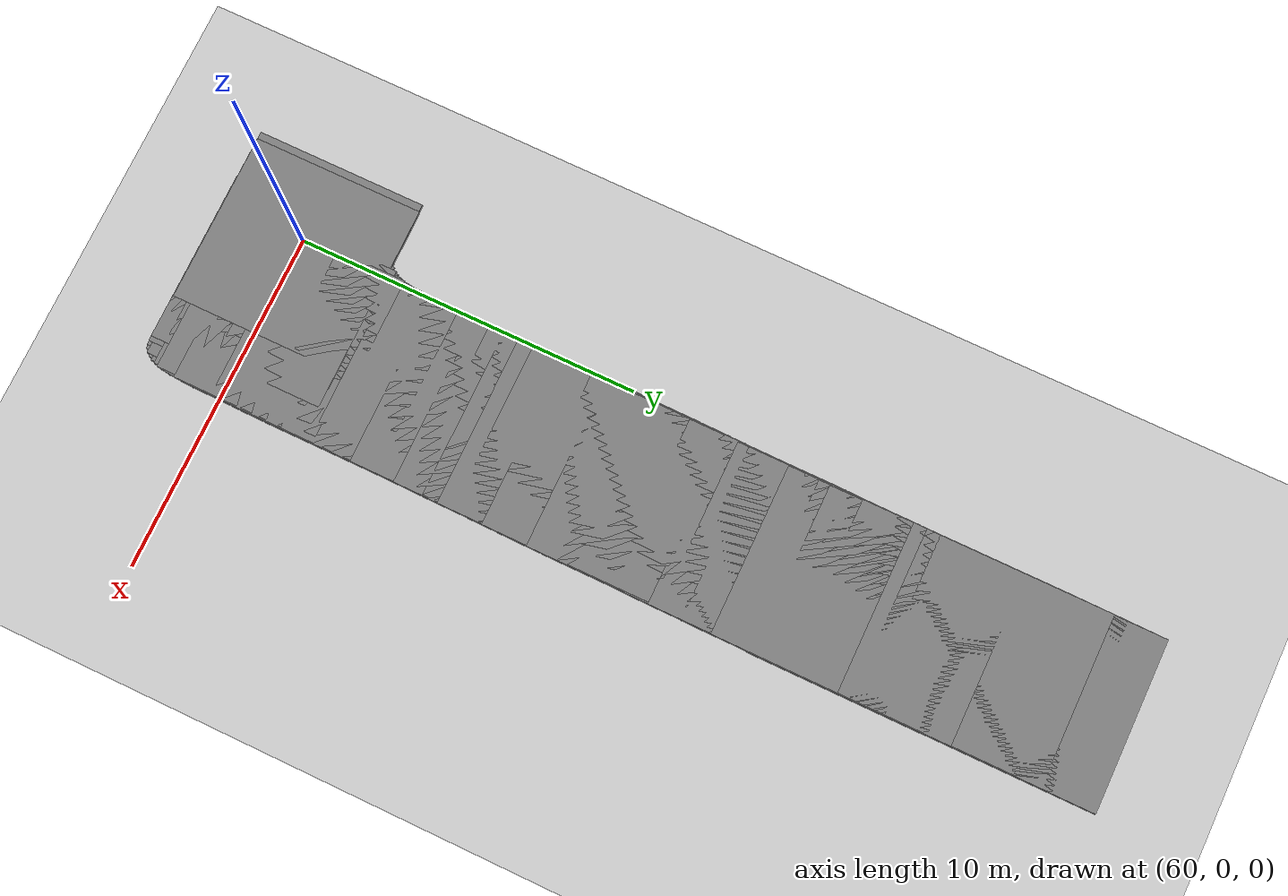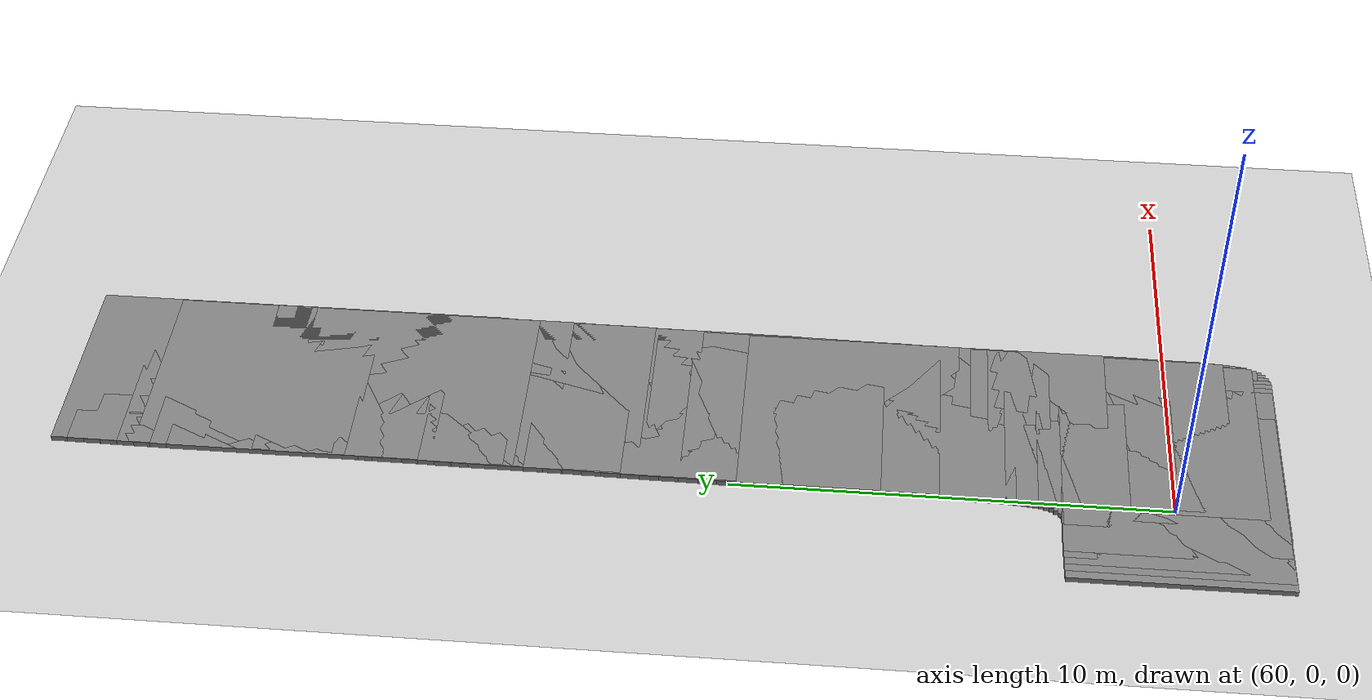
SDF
<sdf version="1.6">
 <world name="default">
  <include><uri>model://sun</uri></include>
  <include><uri>model://ground_plane</uri></include>
  <model name="road_segment_450">
   <static>true</static>
   <link name="link">
    <visual name="visual">
     <geometry><box><size>5.0 5.0 0.2</size></box></geometry>
     <material><ambient>0.5 0.5 0.5 1</ambient><diffuse>0.5 0.5 0.5 1</diffuse></material>
     <pose>62.62235191398804 23.10983084089393 0.0 0 0 0</pose>
    </visual>
    <collision name="collision">
     <geometry><box><size>5.0 5.0 0.2</size></box></geometry>
     <pose>62.62235191398804 23.10983084089393 0.0 0 0 0</pose>
    </collision>
   </link>
  </model>
  <model name="road_segment_451">
   <static>true</static>
   <link name="link">
    <visual name="visual">
     <geometry><box><size>5.0 5.0 0.2</size></box></geometry>
     <material><ambient>0.5 0.5 0.5 1</ambient><diffuse>0.5 0.5 0.5 1</diffuse></material>
     <pose>62.61729699920588 22.73719048786642 0.0 0 0 0</pose>
    </visual>
    <collision name="collision">
     <geometry><box><size>5.0 5.0 0.2</size></box></geometry>
     <pose>62.61729699920588 22.73719048786642 0.0 0 0 0</pose>
    </collision>
   </link>
  </model>
  <model name="road_segment_452">
   <static>true</static>
   <link name="link">
    <visual name="visual">
     <geometry><box><size>5.0 5.0 0.2</size></box></geometry>
     <material><ambient>0.5 0.5 0.5 1</ambient><diffuse>0.5 0.5 0.5 1</diffuse></material>
     <pose>62.613390928716115 22.349840647221697 0.0 0 0 0</pose>
    </visual>
    <collision name="collision">
     <geometry><box><size>5.0 5.0 0.2</size></box></geometry>
     <pose>62.613390928716115 22.349840647221697 0.0 0 0 0</pose>
    </collision>
   </link>
  </model>
  <model name="road_segment_453">
   <static>true</static>
   <link name="link">
    <visual name="visual">
     <geometry><box><size>5.0 5.0 0.2</size></box></geometry>
     <material><ambient>0.5 0.5 0.5 1</ambient><diffuse>0.5 0.5 0.5 1</diffuse></material>
     <pose>62.607187169706826 21.961673612818043 0.0 0 0 0</pose>
    </visual>
    <collision name="collision">
     <geometry><box><size>5.0 5.0 0.2</size></box></geometry>
     <pose>62.607187169706826 21.961673612818043 0.0 0 0 0</pose>
    </collision>
   </link>
  </model>
  <model name="road_segment_454">
   <static>true</static>
   <link name="link">
    <visual name="visual">
     <geometry><box><size>5.0 5.0 0.2</size></box></geometry>
     <material><ambient>0.5 0.5 0.5 1</ambient><diffuse>0.5 0.5 0.5 1</diffuse></material>
     <pose>62.605808556575504 21.57309798153129 0.0 0 0 0</pose>
    </visual>
    <collision name="collision">
     <geometry><box><size>5.0 5.0 0.2</size></box></geometry>
     <pose>62.605808556575504 21.57309798153129 0.0 0 0 0</pose>
    </collision>
   </link>
  </model>
  <model name="road_segment_455">
   <static>true</static>
   <link name="link">
    <visual name="visual">
     <geometry><box><size>5.0 5.0 0.2</size></box></geometry>
     <material><ambient>0.5 0.5 0.5 1</ambient><diffuse>0.5 0.5 0.5 1</diffuse></material>
     <pose>62.6021322549573 21.184930947127636 0.0 0 0 0</pose>
    </visual>
    <collision name="collision">
     <geometry><box><size>5.0 5.0 0.2</size></box></geometry>
     <pose>62.6021322549573 21.184930947127636 0.0 0 0 0</pose>
    </collision>
   </link>
  </model>
  <model name="road_segment_456">
   <static>true</static>
   <link name="link">
    <visual name="visual">
     <geometry><box><size>5.0 5.0 0.2</size></box></geometry>
     <material><ambient>0.5 0.5 0.5 1</ambient><diffuse>0.5 0.5 0.5 1</diffuse></material>
     <pose>62.59868572214534 20.797172509607076 0.0 0 0 0</pose>
    </visual>
    <collision name="collision">
     <geometry><box><size>5.0 5.0 0.2</size></box></geometry>
     <pose>62.59868572214534 20.797172509607076 0.0 0 0 0</pose>
    </collision>
   </link>
  </model>
  <model name="road_segment_457">
   <static>true</static>
   <link name="link">
    <visual name="visual">
     <geometry><box><size>5.0 5.0 0.2</size></box></geometry>
     <material><ambient>0.5 0.5 0.5 1</ambient><diffuse>0.5 0.5 0.5 1</diffuse></material>
     <pose>62.59569872707647 20.41390863774249 0.0 0 0 0</pose>
    </visual>
    <collision name="collision">
     <geometry><box><size>5.0 5.0 0.2</size></box></geometry>
     <pose>62.59569872707647 20.41390863774249 0.0 0 0 0</pose>
    </collision>
   </link>
  </model>
  <model name="road_segment_458">
   <static>true</static>
   <link name="link">
    <visual name="visual">
     <geometry><box><size>5.0 5.0 0.2</size></box></geometry>
     <material><ambient>0.5 0.5 0.5 1</ambient><diffuse>0.5 0.5 0.5 1</diffuse></material>
     <pose>62.59638803362579 20.02860178148421 0.0 0 0 0</pose>
    </visual>
    <collision name="collision">
     <geometry><box><size>5.0 5.0 0.2</size></box></geometry>
     <pose>62.59638803362579 20.02860178148421 0.0 0 0 0</pose>
    </collision>
   </link>
  </model>
  <model name="road_segment_459">
   <static>true</static>
   <link name="link">
    <visual name="visual">
     <geometry><box><size>5.0 5.0 0.2</size></box></geometry>
     <material><ambient>0.5 0.5 0.5 1</ambient><diffuse>0.5 0.5 0.5 1</diffuse></material>
     <pose>62.59661780249735 19.65718721909147 0.0 0 0 0</pose>
    </visual>
    <collision name="collision">
     <geometry><box><size>5.0 5.0 0.2</size></box></geometry>
     <pose>62.59661780249735 19.65718721909147 0.0 0 0 0</pose>
    </collision>
   </link>
  </model>
  <model name="road_segment_460">
   <static>true</static>
   <link name="link">
    <visual name="visual">
     <geometry><box><size>5.0 5.0 0.2</size></box></geometry>
     <material><ambient>0.5 0.5 0.5 1</ambient><diffuse>0.5 0.5 0.5 1</diffuse></material>
     <pose>62.60144294840797 19.318869003844714 0.0 0 0 0</pose>
    </visual>
    <collision name="collision">
     <geometry><box><size>5.0 5.0 0.2</size></box></geometry>
     <pose>62.60144294840797 19.318869003844714 0.0 0 0 0</pose>
    </collision>
   </link>
  </model>
  <model name="road_segment_461">
   <static>true</static>
   <link name="link">
    <visual name="visual">
     <geometry><box><size>5.0 5.0 0.2</size></box></geometry>
     <material><ambient>0.5 0.5 0.5 1</ambient><diffuse>0.5 0.5 0.5 1</diffuse></material>
     <pose>62.61040393364724 19.032033995265476 0.0 0 0 0</pose>
    </visual>
    <collision name="collision">
     <geometry><box><size>5.0 5.0 0.2</size></box></geometry>
     <pose>62.61040393364724 19.032033995265476 0.0 0 0 0</pose>
    </collision>
   </link>
  </model>
  <model name="road_segment_462">
   <static>true</static>
   <link name="link">
    <visual name="visual">
     <geometry><box><size>5.0 5.0 0.2</size></box></geometry>
     <material><ambient>0.5 0.5 0.5 1</ambient><diffuse>0.5 0.5 0.5 1</diffuse></material>
     <pose>62.61476954184744 18.810165890336194 0.0 0 0 0</pose>
    </visual>
    <collision name="collision">
     <geometry><box><size>5.0 5.0 0.2</size></box></geometry>
     <pose>62.61476954184744 18.810165890336194 0.0 0 0 0</pose>
    </collision>
   </link>
  </model>
  <model name="road_segment_463">
   <static>true</static>
   <link name="link">
    <visual name="visual">
     <geometry><box><size>5.0 5.0 0.2</size></box></geometry>
     <material><ambient>0.5 0.5 0.5 1</ambient><diffuse>0.5 0.5 0.5 1</diffuse></material>
     <pose>62.61706723036697 18.64182397646812 0.0 0 0 0</pose>
    </visual>
    <collision name="collision">
     <geometry><box><size>5.0 5.0 0.2</size></box></geometry>
     <pose>62.61706723036697 18.64182397646812 0.0 0 0 0</pose>
    </collision>
   </link>
  </model>
  <model name="road_segment_464">
   <static>true</static>
   <link name="link">
    <visual name="visual">
     <geometry><box><size>5.0 5.0 0.2</size></box></geometry>
     <material><ambient>0.5 0.5 0.5 1</ambient><diffuse>0.5 0.5 0.5 1</diffuse></material>
     <pose>62.61982445659696 18.51475034730632 0.0 0 0 0</pose>
    </visual>
    <collision name="collision">
     <geometry><box><size>5.0 5.0 0.2</size></box></geometry>
     <pose>62.61982445659696 18.51475034730632 0.0 0 0 0</pose>
    </collision>
   </link>
  </model>
  <model name="road_segment_465">
   <static>true</static>
   <link name="link">
    <visual name="visual">
     <geometry><box><size>5.0 5.0 0.2</size></box></geometry>
     <material><ambient>0.5 0.5 0.5 1</ambient><diffuse>0.5 0.5 0.5 1</diffuse></material>
     <pose>62.62028399430739 18.43303097164545 0.0 0 0 0</pose>
    </visual>
    <collision name="collision">
     <geometry><box><size>5.0 5.0 0.2</size></box></geometry>
     <pose>62.62028399430739 18.43303097164545 0.0 0 0 0</pose>
    </collision>
   </link>
  </model>
  <model name="road_segment_466">
   <static>true</static>
   <link name="link">
    <visual name="visual">
     <geometry><box><size>5.0 5.0 0.2</size></box></geometry>
     <material><ambient>0.5 0.5 0.5 1</ambient><diffuse>0.5 0.5 0.5 1</diffuse></material>
     <pose>62.62189237627761 18.36847266487133 0.0 0 0 0</pose>
    </visual>
    <collision name="collision">
     <geometry><box><size>5.0 5.0 0.2</size></box></geometry>
     <pose>62.62189237627761 18.36847266487133 0.0 0 0 0</pose>
    </collision>
   </link>
  </model>
  <model name="road_segment_467">
   <static>true</static>
   <link name="link">
    <visual name="visual">
     <geometry><box><size>5.0 5.0 0.2</size></box></geometry>
     <material><ambient>0.5 0.5 0.5 1</ambient><diffuse>0.5 0.5 0.5 1</diffuse></material>
     <pose>62.62717705986602 18.290839257990598 0.0 0 0 0</pose>
    </visual>
    <collision name="collision">
     <geometry><box><size>5.0 5.0 0.2</size></box></geometry>
     <pose>62.62717705986602 18.290839257990598 0.0 0 0 0</pose>
    </collision>
   </link>
  </model>
  <model name="road_segment_468">
   <static>true</static>
   <link name="link">
    <visual name="visual">
     <geometry><box><size>5.0 5.0 0.2</size></box></geometry>
     <material><ambient>0.5 0.5 0.5 1</ambient><diffuse>0.5 0.5 0.5 1</diffuse></material>
     <pose>62.62487937134647 18.182969682116507 0.0 0 0 0</pose>
    </visual>
    <collision name="collision">
     <geometry><box><size>5.0 5.0 0.2</size></box></geometry>
     <pose>62.62487937134647 18.182969682116507 0.0 0 0 0</pose>
    </collision>
   </link>
  </model>
  <model name="road_segment_469">
   <static>true</static>
   <link name="link">
    <visual name="visual">
     <geometry><box><size>5.0 5.0 0.2</size></box></geometry>
     <material><ambient>0.5 0.5 0.5 1</ambient><diffuse>0.5 0.5 0.5 1</diffuse></material>
     <pose>62.61270162216679 18.04118656533749 0.0 0 0 0</pose>
    </visual>
    <collision name="collision">
     <geometry><box><size>5.0 5.0 0.2</size></box></geometry>
     <pose>62.61270162216679 18.04118656533749 0.0 0 0 0</pose>
    </collision>
   </link>
  </model>
  <model name="road_segment_470">
   <static>true</static>
   <link name="link">
    <visual name="visual">
     <geometry><box><size>5.0 5.0 0.2</size></box></geometry>
     <material><ambient>0.5 0.5 0.5 1</ambient><diffuse>0.5 0.5 0.5 1</diffuse></material>
     <pose>62.60351086805597 17.860178148238646 0.0 0 0 0</pose>
    </visual>
    <collision name="collision">
     <geometry><box><size>5.0 5.0 0.2</size></box></geometry>
     <pose>62.60351086805597 17.860178148238646 0.0 0 0 0</pose>
    </collision>
   </link>
  </model>
  <model name="road_segment_471">
   <static>true</static>
   <link name="link">
    <visual name="visual">
     <geometry><box><size>5.0 5.0 0.2</size></box></geometry>
     <material><ambient>0.5 0.5 0.5 1</ambient><diffuse>0.5 0.5 0.5 1</diffuse></material>
     <pose>62.59868572214534 17.647299174635833 0.0 0 0 0</pose>
    </visual>
    <collision name="collision">
     <geometry><box><size>5.0 5.0 0.2</size></box></geometry>
     <pose>62.59868572214534 17.647299174635833 0.0 0 0 0</pose>
    </collision>
   </link>
  </model>
  <model name="road_segment_472">
   <static>true</static>
   <link name="link">
    <visual name="visual">
     <geometry><box><size>5.0 5.0 0.2</size></box></geometry>
     <material><ambient>0.5 0.5 0.5 1</ambient><diffuse>0.5 0.5 0.5 1</diffuse></material>
     <pose>62.59891549101688 17.408678597695637 0.0 0 0 0</pose>
    </visual>
    <collision name="collision">
     <geometry><box><size>5.0 5.0 0.2</size></box></geometry>
     <pose>62.59891549101688 17.408678597695637 0.0 0 0 0</pose>
    </collision>
   </link>
  </model>
  <model name="road_segment_473">
   <static>true</static>
   <link name="link">
    <visual name="visual">
     <geometry><box><size>5.0 5.0 0.2</size></box></geometry>
     <material><ambient>0.5 0.5 0.5 1</ambient><diffuse>0.5 0.5 0.5 1</diffuse></material>
     <pose>62.60305133034553 17.14881098308855 0.0 0 0 0</pose>
    </visual>
    <collision name="collision">
     <geometry><box><size>5.0 5.0 0.2</size></box></geometry>
     <pose>62.60305133034553 17.14881098308855 0.0 0 0 0</pose>
    </collision>
   </link>
  </model>
  <model name="road_segment_474">
   <static>true</static>
   <link name="link">
    <visual name="visual">
     <geometry><box><size>5.0 5.0 0.2</size></box></geometry>
     <material><ambient>0.5 0.5 0.5 1</ambient><diffuse>0.5 0.5 0.5 1</diffuse></material>
     <pose>62.603740636927505 16.873416687098057 0.0 0 0 0</pose>
    </visual>
    <collision name="collision">
     <geometry><box><size>5.0 5.0 0.2</size></box></geometry>
     <pose>62.603740636927505 16.873416687098057 0.0 0 0 0</pose>
    </collision>
   </link>
  </model>
  <model name="road_segment_475">
   <static>true</static>
   <link name="link">
    <visual name="visual">
     <geometry><box><size>5.0 5.0 0.2</size></box></geometry>
     <material><ambient>0.5 0.5 0.5 1</ambient><diffuse>0.5 0.5 0.5 1</diffuse></material>
     <pose>62.6021322549573 16.583312903490352 0.0 0 0 0</pose>
    </visual>
    <collision name="collision">
     <geometry><box><size>5.0 5.0 0.2</size></box></geometry>
     <pose>62.6021322549573 16.583312903490352 0.0 0 0 0</pose>
    </collision>
   </link>
  </model>
  <model name="road_segment_476">
   <static>true</static>
   <link name="link">
    <visual name="visual">
     <geometry><box><size>5.0 5.0 0.2</size></box></geometry>
     <material><ambient>0.5 0.5 0.5 1</ambient><diffuse>0.5 0.5 0.5 1</diffuse></material>
     <pose>62.59753687788556 16.282994197928666 0.0 0 0 0</pose>
    </visual>
    <collision name="collision">
     <geometry><box><size>5.0 5.0 0.2</size></box></geometry>
     <pose>62.59753687788556 16.282994197928666 0.0 0 0 0</pose>
    </collision>
   </link>
  </model>
  <model name="road_segment_477">
   <static>true</static>
   <link name="link">
    <visual name="visual">
     <geometry><box><size>5.0 5.0 0.2</size></box></geometry>
     <material><ambient>0.5 0.5 0.5 1</ambient><diffuse>0.5 0.5 0.5 1</diffuse></material>
     <pose>62.58903543035673 15.972460570405742 0.0 0 0 0</pose>
    </visual>
    <collision name="collision">
     <geometry><box><size>5.0 5.0 0.2</size></box></geometry>
     <pose>62.58903543035673 15.972460570405742 0.0 0 0 0</pose>
    </collision>
   </link>
  </model>
  <model name="road_segment_478">
   <static>true</static>
   <link name="link">
    <visual name="visual">
     <geometry><box><size>5.0 5.0 0.2</size></box></geometry>
     <material><ambient>0.5 0.5 0.5 1</ambient><diffuse>0.5 0.5 0.5 1</diffuse></material>
     <pose>62.58811635493585 15.649260439652043 0.0 0 0 0</pose>
    </visual>
    <collision name="collision">
     <geometry><box><size>5.0 5.0 0.2</size></box></geometry>
     <pose>62.58811635493585 15.649260439652043 0.0 0 0 0</pose>
    </collision>
   </link>
  </model>
  <model name="road_segment_479">
   <static>true</static>
   <link name="link">
    <visual name="visual">
     <geometry><box><size>5.0 5.0 0.2</size></box></geometry>
     <material><ambient>0.5 0.5 0.5 1</ambient><diffuse>0.5 0.5 0.5 1</diffuse></material>
     <pose>62.58880566151783 15.315436790061272 0.0 0 0 0</pose>
    </visual>
    <collision name="collision">
     <geometry><box><size>5.0 5.0 0.2</size></box></geometry>
     <pose>62.58880566151783 15.315436790061272 0.0 0 0 0</pose>
    </collision>
   </link>
  </model>
  <model name="road_segment_480">
   <static>true</static>
   <link name="link">
    <visual name="visual">
     <geometry><box><size>5.0 5.0 0.2</size></box></geometry>
     <material><ambient>0.5 0.5 0.5 1</ambient><diffuse>0.5 0.5 0.5 1</diffuse></material>
     <pose>62.585359128705875 14.963634877832074 0.0 0 0 0</pose>
    </visual>
    <collision name="collision">
     <geometry><box><size>5.0 5.0 0.2</size></box></geometry>
     <pose>62.585359128705875 14.963634877832074 0.0 0 0 0</pose>
    </collision>
   </link>
  </model>
  <model name="road_segment_481">
   <static>true</static>
   <link name="link">
    <visual name="visual">
     <geometry><box><size>5.0 5.0 0.2</size></box></geometry>
     <material><ambient>0.5 0.5 0.5 1</ambient><diffuse>0.5 0.5 0.5 1</diffuse></material>
     <pose>62.582372133637 14.59875786548901 0.0 0 0 0</pose>
    </visual>
    <collision name="collision">
     <geometry><box><size>5.0 5.0 0.2</size></box></geometry>
     <pose>62.582372133637 14.59875786548901 0.0 0 0 0</pose>
    </collision>
   </link>
  </model>
  <model name="road_segment_482">
   <static>true</static>
   <link name="link">
    <visual name="visual">
     <geometry><box><size>5.0 5.0 0.2</size></box></geometry>
     <material><ambient>0.5 0.5 0.5 1</ambient><diffuse>0.5 0.5 0.5 1</diffuse></material>
     <pose>62.57180276642752 14.218762768652892 0.0 0 0 0</pose>
    </visual>
    <collision name="collision">
     <geometry><box><size>5.0 5.0 0.2</size></box></geometry>
     <pose>62.57180276642752 14.218762768652892 0.0 0 0 0</pose>
    </collision>
   </link>
  </model>
  <model name="road_segment_483">
   <static>true</static>
   <link name="link">
    <visual name="visual">
     <geometry><box><size>5.0 5.0 0.2</size></box></geometry>
     <material><ambient>0.5 0.5 0.5 1</ambient><diffuse>0.5 0.5 0.5 1</diffuse></material>
     <pose>62.566518082806446 13.831412928008167 0.0 0 0 0</pose>
    </visual>
    <collision name="collision">
     <geometry><box><size>5.0 5.0 0.2</size></box></geometry>
     <pose>62.566518082806446 13.831412928008167 0.0 0 0 0</pose>
    </collision>
   </link>
  </model>
  <model name="road_segment_484">
   <static>true</static>
   <link name="link">
    <visual name="visual">
     <geometry><box><size>5.0 5.0 0.2</size></box></geometry>
     <material><ambient>0.5 0.5 0.5 1</ambient><diffuse>0.5 0.5 0.5 1</diffuse></material>
     <pose>62.5644501631258 13.439159924817112 0.0 0 0 0</pose>
    </visual>
    <collision name="collision">
     <geometry><box><size>5.0 5.0 0.2</size></box></geometry>
     <pose>62.5644501631258 13.439159924817112 0.0 0 0 0</pose>
    </collision>
   </link>
  </model>
  <model name="road_segment_485">
   <static>true</static>
   <link name="link">
    <visual name="visual">
     <geometry><box><size>5.0 5.0 0.2</size></box></geometry>
     <material><ambient>0.5 0.5 0.5 1</ambient><diffuse>0.5 0.5 0.5 1</diffuse></material>
     <pose>62.56582877625711 13.025659883959168 0.0 0 0 0</pose>
    </visual>
    <collision name="collision">
     <geometry><box><size>5.0 5.0 0.2</size></box></geometry>
     <pose>62.56582877625711 13.025659883959168 0.0 0 0 0</pose>
    </collision>
   </link>
  </model>
  <model name="road_segment_486">
   <static>true</static>
   <link name="link">
    <visual name="visual">
     <geometry><box><size>5.0 5.0 0.2</size></box></geometry>
     <material><ambient>0.5 0.5 0.5 1</ambient><diffuse>0.5 0.5 0.5 1</diffuse></material>
     <pose>62.565599007385565 12.608073874321082 0.0 0 0 0</pose>
    </visual>
    <collision name="collision">
     <geometry><box><size>5.0 5.0 0.2</size></box></geometry>
     <pose>62.565599007385565 12.608073874321082 0.0 0 0 0</pose>
    </collision>
   </link>
  </model>
  <model name="road_segment_487">
   <static>true</static>
   <link name="link">
    <visual name="visual">
     <geometry><box><size>5.0 5.0 0.2</size></box></geometry>
     <material><ambient>0.5 0.5 0.5 1</ambient><diffuse>0.5 0.5 0.5 1</diffuse></material>
     <pose>62.563301318866024 12.173735392664826 0.0 0 0 0</pose>
    </visual>
    <collision name="collision">
     <geometry><box><size>5.0 5.0 0.2</size></box></geometry>
     <pose>62.563301318866024 12.173735392664826 0.0 0 0 0</pose>
    </collision>
   </link>
  </model>
  <model name="road_segment_488">
   <static>true</static>
   <link name="link">
    <visual name="visual">
     <geometry><box><size>5.0 5.0 0.2</size></box></geometry>
     <material><ambient>0.5 0.5 0.5 1</ambient><diffuse>0.5 0.5 0.5 1</diffuse></material>
     <pose>62.5584761729554 11.735310942228427 0.0 0 0 0</pose>
    </visual>
    <collision name="collision">
     <geometry><box><size>5.0 5.0 0.2</size></box></geometry>
     <pose>62.5584761729554 11.735310942228427 0.0 0 0 0</pose>
    </collision>
   </link>
  </model>
  <model name="road_segment_489">
   <static>true</static>
   <link name="link">
    <visual name="visual">
     <geometry><box><size>5.0 5.0 0.2</size></box></geometry>
     <material><ambient>0.5 0.5 0.5 1</ambient><diffuse>0.5 0.5 0.5 1</diffuse></material>
     <pose>62.556867790985194 11.289531747976165 0.0 0 0 0</pose>
    </visual>
    <collision name="collision">
     <geometry><box><size>5.0 5.0 0.2</size></box></geometry>
     <pose>62.556867790985194 11.289531747976165 0.0 0 0 0</pose>
    </collision>
   </link>
  </model>
  <model name="road_segment_490">
   <static>true</static>
   <link name="link">
    <visual name="visual">
     <geometry><box><size>5.0 5.0 0.2</size></box></geometry>
     <material><ambient>0.5 0.5 0.5 1</ambient><diffuse>0.5 0.5 0.5 1</diffuse></material>
     <pose>62.54859611229525 10.849064313153326 0.0 0 0 0</pose>
    </visual>
    <collision name="collision">
     <geometry><box><size>5.0 5.0 0.2</size></box></geometry>
     <pose>62.54859611229525 10.849064313153326 0.0 0 0 0</pose>
    </collision>
   </link>
  </model>
  <model name="road_segment_491">
   <static>true</static>
   <link name="link">
    <visual name="visual">
     <geometry><box><size>5.0 5.0 0.2</size></box></geometry>
     <material><ambient>0.5 0.5 0.5 1</ambient><diffuse>0.5 0.5 0.5 1</diffuse></material>
     <pose>62.54009466476641 10.405328103294762 0.0 0 0 0</pose>
    </visual>
    <collision name="collision">
     <geometry><box><size>5.0 5.0 0.2</size></box></geometry>
     <pose>62.54009466476641 10.405328103294762 0.0 0 0 0</pose>
    </collision>
   </link>
  </model>
  <model name="road_segment_492">
   <static>true</static>
   <link name="link">
    <visual name="visual">
     <geometry><box><size>5.0 5.0 0.2</size></box></geometry>
     <material><ambient>0.5 0.5 0.5 1</ambient><diffuse>0.5 0.5 0.5 1</diffuse></material>
     <pose>62.535269518855785 9.96118329656036 0.0 0 0 0</pose>
    </visual>
    <collision name="collision">
     <geometry><box><size>5.0 5.0 0.2</size></box></geometry>
     <pose>62.535269518855785 9.96118329656036 0.0 0 0 0</pose>
    </collision>
   </link>
  </model>
  <model name="road_segment_493">
   <static>true</static>
   <link name="link">
    <visual name="visual">
     <geometry><box><size>5.0 5.0 0.2</size></box></geometry>
     <material><ambient>0.5 0.5 0.5 1</ambient><diffuse>0.5 0.5 0.5 1</diffuse></material>
     <pose>62.526078764744966 9.521941652365031 0.0 0 0 0</pose>
    </visual>
    <collision name="collision">
     <geometry><box><size>5.0 5.0 0.2</size></box></geometry>
     <pose>62.526078764744966 9.521941652365031 0.0 0 0 0</pose>
    </collision>
   </link>
  </model>
  <model name="road_segment_494">
   <static>true</static>
   <link name="link">
    <visual name="visual">
     <geometry><box><size>5.0 5.0 0.2</size></box></geometry>
     <material><ambient>0.5 0.5 0.5 1</ambient><diffuse>0.5 0.5 0.5 1</diffuse></material>
     <pose>62.52401084509697 9.079022636272656 0.0 0 0 0</pose>
    </visual>
    <collision name="collision">
     <geometry><box><size>5.0 5.0 0.2</size></box></geometry>
     <pose>62.52401084509697 9.079022636272656 0.0 0 0 0</pose>
    </collision>
   </link>
  </model>
  <model name="road_segment_495">
   <static>true</static>
   <link name="link">
    <visual name="visual">
     <geometry><box><size>5.0 5.0 0.2</size></box></geometry>
     <material><ambient>0.5 0.5 0.5 1</ambient><diffuse>0.5 0.5 0.5 1</diffuse></material>
     <pose>62.52102384999544 8.631200457633952 0.0 0 0 0</pose>
    </visual>
    <collision name="collision">
     <geometry><box><size>5.0 5.0 0.2</size></box></geometry>
     <pose>62.52102384999544 8.631200457633952 0.0 0 0 0</pose>
    </collision>
   </link>
  </model>
  <model name="road_segment_496">
   <static>true</static>
   <link name="link">
    <visual name="visual">
     <geometry><box><size>5.0 5.0 0.2</size></box></geometry>
     <material><ambient>0.5 0.5 0.5 1</ambient><diffuse>0.5 0.5 0.5 1</diffuse></material>
     <pose>62.51436055327571 8.194001797825063 0.0 0 0 0</pose>
    </visual>
    <collision name="collision">
     <geometry><box><size>5.0 5.0 0.2</size></box></geometry>
     <pose>62.51436055327571 8.194001797825063 0.0 0 0 0</pose>
    </collision>
   </link>
  </model>
  <model name="road_segment_497">
   <static>true</static>
   <link name="link">
    <visual name="visual">
     <geometry><box><size>5.0 5.0 0.2</size></box></geometry>
     <material><ambient>0.5 0.5 0.5 1</ambient><diffuse>0.5 0.5 0.5 1</diffuse></material>
     <pose>62.50723771884553 7.764975075590972 0.0 0 0 0</pose>
    </visual>
    <collision name="collision">
     <geometry><box><size>5.0 5.0 0.2</size></box></geometry>
     <pose>62.50723771884553 7.764975075590972 0.0 0 0 0</pose>
    </collision>
   </link>
  </model>
  <model name="road_segment_498">
   <static>true</static>
   <link name="link">
    <visual name="visual">
     <geometry><box><size>5.0 5.0 0.2</size></box></geometry>
     <material><ambient>0.5 0.5 0.5 1</ambient><diffuse>0.5 0.5 0.5 1</diffuse></material>
     <pose>62.502182804096016 7.333088175211509 0.0 0 0 0</pose>
    </visual>
    <collision name="collision">
     <geometry><box><size>5.0 5.0 0.2</size></box></geometry>
     <pose>62.502182804096016 7.333088175211509 0.0 0 0 0</pose>
    </collision>
   </link>
  </model>
  <model name="road_segment_499">
   <static>true</static>
   <link name="link">
    <visual name="visual">
     <geometry><box><size>5.0 5.0 0.2</size></box></geometry>
     <material><ambient>0.5 0.5 0.5 1</ambient><diffuse>0.5 0.5 0.5 1</diffuse></material>
     <pose>62.5005744221258 6.8962981122857165 0.0 0 0 0</pose>
    </visual>
    <collision name="collision">
     <geometry><box><size>5.0 5.0 0.2</size></box></geometry>
     <pose>62.5005744221258 6.8962981122857165 0.0 0 0 0</pose>
    </collision>
   </link>
  </model>
  <model name="road_segment_500">
   <static>true</static>
   <link name="link">
    <visual name="visual">
     <geometry><box><size>5.0 5.0 0.2</size></box></geometry>
     <material><ambient>0.5 0.5 0.5 1</ambient><diffuse>0.5 0.5 0.5 1</diffuse></material>
     <pose>62.49322181885674 6.4631854212642255 0.0 0 0 0</pose>
    </visual>
    <collision name="collision">
     <geometry><box><size>5.0 5.0 0.2</size></box></geometry>
     <pose>62.49322181885674 6.4631854212642255 0.0 0 0 0</pose>
    </collision>
   </link>
  </model>
  <model name="road_segment_501">
   <static>true</static>
   <link name="link">
    <visual name="visual">
     <geometry><box><size>5.0 5.0 0.2</size></box></geometry>
     <material><ambient>0.5 0.5 0.5 1</ambient><diffuse>0.5 0.5 0.5 1</diffuse></material>
     <pose>62.484490602456354 6.048868186647349 0.0 0 0 0</pose>
    </visual>
    <collision name="collision">
     <geometry><box><size>5.0 5.0 0.2</size></box></geometry>
     <pose>62.484490602456354 6.048868186647349 0.0 0 0 0</pose>
    </collision>
   </link>
  </model>
  <model name="road_segment_502">
   <static>true</static>
   <link name="link">
    <visual name="visual">
     <geometry><box><size>5.0 5.0 0.2</size></box></geometry>
     <material><ambient>0.5 0.5 0.5 1</ambient><diffuse>0.5 0.5 0.5 1</diffuse></material>
     <pose>62.48150360735484 5.6451744708675475 0.0 0 0 0</pose>
    </visual>
    <collision name="collision">
     <geometry><box><size>5.0 5.0 0.2</size></box></geometry>
     <pose>62.48150360735484 5.6451744708675475 0.0 0 0 0</pose>
    </collision>
   </link>
  </model>
  <model name="road_segment_503">
   <static>true</static>
   <link name="link">
    <visual name="visual">
     <geometry><box><size>5.0 5.0 0.2</size></box></geometry>
     <material><ambient>0.5 0.5 0.5 1</ambient><diffuse>0.5 0.5 0.5 1</diffuse></material>
     <pose>62.49000505491632 5.226771267470531 0.0 0 0 0</pose>
    </visual>
    <collision name="collision">
     <geometry><box><size>5.0 5.0 0.2</size></box></geometry>
     <pose>62.49000505491632 5.226771267470531 0.0 0 0 0</pose>
    </collision>
   </link>
  </model>
  <model name="road_segment_504">
   <static>true</static>
   <link name="link">
    <visual name="visual">
     <geometry><box><size>5.0 5.0 0.2</size></box></geometry>
     <material><ambient>0.5 0.5 0.5 1</ambient><diffuse>0.5 0.5 0.5 1</diffuse></material>
     <pose>62.49574927621517 4.790389801427833 0.0 0 0 0</pose>
    </visual>
    <collision name="collision">
     <geometry><box><size>5.0 5.0 0.2</size></box></geometry>
     <pose>62.49574927621517 4.790389801427833 0.0 0 0 0</pose>
    </collision>
   </link>
  </model>
  <model name="road_segment_505">
   <static>true</static>
   <link name="link">
    <visual name="visual">
     <geometry><box><size>5.0 5.0 0.2</size></box></geometry>
     <material><ambient>0.5 0.5 0.5 1</ambient><diffuse>0.5 0.5 0.5 1</diffuse></material>
     <pose>62.49850650244515 4.342159025906033 0.0 0 0 0</pose>
    </visual>
    <collision name="collision">
     <geometry><box><size>5.0 5.0 0.2</size></box></geometry>
     <pose>62.49850650244515 4.342159025906033 0.0 0 0 0</pose>
    </collision>
   </link>
  </model>
  <model name="road_segment_506">
   <static>true</static>
   <link name="link">
    <visual name="visual">
     <geometry><box><size>5.0 5.0 0.2</size></box></geometry>
     <material><ambient>0.5 0.5 0.5 1</ambient><diffuse>0.5 0.5 0.5 1</diffuse></material>
     <pose>62.49965534670493 3.9029173817107043 0.0 0 0 0</pose>
    </visual>
    <collision name="collision">
     <geometry><box><size>5.0 5.0 0.2</size></box></geometry>
     <pose>62.49965534670493 3.9029173817107043 0.0 0 0 0</pose>
    </collision>
   </link>
  </model>
  <model name="road_segment_507">
   <static>true</static>
   <link name="link">
    <visual name="visual">
     <geometry><box><size>5.0 5.0 0.2</size></box></geometry>
     <material><ambient>0.5 0.5 0.5 1</ambient><diffuse>0.5 0.5 0.5 1</diffuse></material>
     <pose>62.494140894244964 3.5069870066226048 0.0 0 0 0</pose>
    </visual>
    <collision name="collision">
     <geometry><box><size>5.0 5.0 0.2</size></box></geometry>
     <pose>62.494140894244964 3.5069870066226048 0.0 0 0 0</pose>
    </collision>
   </link>
  </model>
  <model name="road_segment_508">
   <static>true</static>
   <link name="link">
    <visual name="visual">
     <geometry><box><size>5.0 5.0 0.2</size></box></geometry>
     <material><ambient>0.5 0.5 0.5 1</ambient><diffuse>0.5 0.5 0.5 1</diffuse></material>
     <pose>62.49230274343586 3.1678515976169233 0.0 0 0 0</pose>
    </visual>
    <collision name="collision">
     <geometry><box><size>5.0 5.0 0.2</size></box></geometry>
     <pose>62.49230274343586 3.1678515976169233 0.0 0 0 0</pose>
    </collision>
   </link>
  </model>
  <model name="road_segment_509">
   <static>true</static>
   <link name="link">
    <visual name="visual">
     <geometry><box><size>5.0 5.0 0.2</size></box></geometry>
     <material><ambient>0.5 0.5 0.5 1</ambient><diffuse>0.5 0.5 0.5 1</diffuse></material>
     <pose>62.485639446716135 2.8830595734241253 0.0 0 0 0</pose>
    </visual>
    <collision name="collision">
     <geometry><box><size>5.0 5.0 0.2</size></box></geometry>
     <pose>62.485639446716135 2.8830595734241253 0.0 0 0 0</pose>
    </collision>
   </link>
  </model>
  <model name="road_segment_510">
   <static>true</static>
   <link name="link">
    <visual name="visual">
     <geometry><box><size>5.0 5.0 0.2</size></box></geometry>
     <material><ambient>0.5 0.5 0.5 1</ambient><diffuse>0.5 0.5 0.5 1</diffuse></material>
     <pose>62.478057074575524 2.6415788183385565 0.0 0 0 0</pose>
    </visual>
    <collision name="collision">
     <geometry><box><size>5.0 5.0 0.2</size></box></geometry>
     <pose>62.478057074575524 2.6415788183385565 0.0 0 0 0</pose>
    </collision>
   </link>
  </model>
  <model name="road_segment_511">
   <static>true</static>
   <link name="link">
    <visual name="visual">
     <geometry><box><size>5.0 5.0 0.2</size></box></geometry>
     <material><ambient>0.5 0.5 0.5 1</ambient><diffuse>0.5 0.5 0.5 1</diffuse></material>
     <pose>62.475070079506644 2.4307428291294437 0.0 0 0 0</pose>
    </visual>
    <collision name="collision">
     <geometry><box><size>5.0 5.0 0.2</size></box></geometry>
     <pose>62.475070079506644 2.4307428291294437 0.0 0 0 0</pose>
    </collision>
   </link>
  </model>
  <model name="road_segment_512">
   <static>true</static>
   <link name="link">
    <visual name="visual">
     <geometry><box><size>5.0 5.0 0.2</size></box></geometry>
     <material><ambient>0.5 0.5 0.5 1</ambient><diffuse>0.5 0.5 0.5 1</diffuse></material>
     <pose>62.47001516475712 2.2472828307610615 0.0 0 0 0</pose>
    </visual>
    <collision name="collision">
     <geometry><box><size>5.0 5.0 0.2</size></box></geometry>
     <pose>62.47001516475712 2.2472828307610615 0.0 0 0 0</pose>
    </collision>
   </link>
  </model>
  <model name="road_segment_513">
   <static>true</static>
   <link name="link">
    <visual name="visual">
     <geometry><box><size>5.0 5.0 0.2</size></box></geometry>
     <material><ambient>0.5 0.5 0.5 1</ambient><diffuse>0.5 0.5 0.5 1</diffuse></material>
     <pose>62.465419787685384 2.0593282667367023 0.0 0 0 0</pose>
    </visual>
    <collision name="collision">
     <geometry><box><size>5.0 5.0 0.2</size></box></geometry>
     <pose>62.465419787685384 2.0593282667367023 0.0 0 0 0</pose>
    </collision>
   </link>
  </model>
  <model name="road_segment_514">
   <static>true</static>
   <link name="link">
    <visual name="visual">
     <geometry><box><size>5.0 5.0 0.2</size></box></geometry>
     <material><ambient>0.5 0.5 0.5 1</ambient><diffuse>0.5 0.5 0.5 1</diffuse></material>
     <pose>62.46771747620493 1.861567377626942 0.0 0 0 0</pose>
    </visual>
    <collision name="collision">
     <geometry><box><size>5.0 5.0 0.2</size></box></geometry>
     <pose>62.46771747620493 1.861567377626942 0.0 0 0 0</pose>
    </collision>
   </link>
  </model>
  <model name="road_segment_515">
   <static>true</static>
   <link name="link">
    <visual name="visual">
     <geometry><box><size>5.0 5.0 0.2</size></box></geometry>
     <material><ambient>0.5 0.5 0.5 1</ambient><diffuse>0.5 0.5 0.5 1</diffuse></material>
     <pose>62.47024493359602 1.6597205197370408 0.0 0 0 0</pose>
    </visual>
    <collision name="collision">
     <geometry><box><size>5.0 5.0 0.2</size></box></geometry>
     <pose>62.47024493359602 1.6597205197370408 0.0 0 0 0</pose>
    </collision>
   </link>
  </model>
  <model name="road_segment_516">
   <static>true</static>
   <link name="link">
    <visual name="visual">
     <geometry><box><size>5.0 5.0 0.2</size></box></geometry>
     <material><ambient>0.5 0.5 0.5 1</ambient><diffuse>0.5 0.5 0.5 1</diffuse></material>
     <pose>62.464500712297166 1.4729917463474498 0.0 0 0 0</pose>
    </visual>
    <collision name="collision">
     <geometry><box><size>5.0 5.0 0.2</size></box></geometry>
     <pose>62.464500712297166 1.4729917463474498 0.0 0 0 0</pose>
    </collision>
   </link>
  </model>
  <model name="road_segment_517">
   <static>true</static>
   <link name="link">
    <visual name="visual">
     <geometry><box><size>5.0 5.0 0.2</size></box></geometry>
     <material><ambient>0.5 0.5 0.5 1</ambient><diffuse>0.5 0.5 0.5 1</diffuse></material>
     <pose>62.453931345055025 1.2854457791989273 0.0 0 0 0</pose>
    </visual>
    <collision name="collision">
     <geometry><box><size>5.0 5.0 0.2</size></box></geometry>
     <pose>62.453931345055025 1.2854457791989273 0.0 0 0 0</pose>
    </collision>
   </link>
  </model>
  <model name="road_segment_518">
   <static>true</static>
   <link name="link">
    <visual name="visual">
     <geometry><box><size>5.0 5.0 0.2</size></box></geometry>
     <material><ambient>0.5 0.5 0.5 1</ambient><diffuse>0.5 0.5 0.5 1</diffuse></material>
     <pose>62.43876660080646 1.1068889433696165 0.0 0 0 0</pose>
    </visual>
    <collision name="collision">
     <geometry><box><size>5.0 5.0 0.2</size></box></geometry>
     <pose>62.43876660080646 1.1068889433696165 0.0 0 0 0</pose>
    </collision>
   </link>
  </model>
  <model name="road_segment_519">
   <static>true</static>
   <link name="link">
    <visual name="visual">
     <geometry><box><size>5.0 5.0 0.2</size></box></geometry>
     <material><ambient>0.5 0.5 0.5 1</ambient><diffuse>0.5 0.5 0.5 1</diffuse></material>
     <pose>62.427737695886535 0.9463103701932463 0.0 0 0 0</pose>
    </visual>
    <collision name="collision">
     <geometry><box><size>5.0 5.0 0.2</size></box></geometry>
     <pose>62.427737695886535 0.9463103701932463 0.0 0 0 0</pose>
    </collision>
   </link>
  </model>
  <model name="road_segment_520">
   <static>true</static>
   <link name="link">
    <visual name="visual">
     <geometry><box><size>5.0 5.0 0.2</size></box></geometry>
     <material><ambient>0.5 0.5 0.5 1</ambient><diffuse>0.5 0.5 0.5 1</diffuse></material>
     <pose>62.41119433850665 0.8077960284426983 0.0 0 0 0</pose>
    </visual>
    <collision name="collision">
     <geometry><box><size>5.0 5.0 0.2</size></box></geometry>
     <pose>62.41119433850665 0.8077960284426983 0.0 0 0 0</pose>
    </collision>
   </link>
  </model>
  <model name="road_segment_521">
   <static>true</static>
   <link name="link">
    <visual name="visual">
     <geometry><box><size>5.0 5.0 0.2</size></box></geometry>
     <material><ambient>0.5 0.5 0.5 1</ambient><diffuse>0.5 0.5 0.5 1</diffuse></material>
     <pose>62.39671890077476 0.6807223992808978 0.0 0 0 0</pose>
    </visual>
    <collision name="collision">
     <geometry><box><size>5.0 5.0 0.2</size></box></geometry>
     <pose>62.39671890077476 0.6807223992808978 0.0 0 0 0</pose>
    </collision>
   </link>
  </model>
  <model name="road_segment_522">
   <static>true</static>
   <link name="link">
    <visual name="visual">
     <geometry><box><size>5.0 5.0 0.2</size></box></geometry>
     <material><ambient>0.5 0.5 0.5 1</ambient><diffuse>0.5 0.5 0.5 1</diffuse></material>
     <pose>62.37167409586605 0.5561003513958914 0.0 0 0 0</pose>
    </visual>
    <collision name="collision">
     <geometry><box><size>5.0 5.0 0.2</size></box></geometry>
     <pose>62.37167409586605 0.5561003513958914 0.0 0 0 0</pose>
    </collision>
   </link>
  </model>
  <model name="road_segment_523">
   <static>true</static>
   <link name="link">
    <visual name="visual">
     <geometry><box><size>5.0 5.0 0.2</size></box></geometry>
     <material><ambient>0.5 0.5 0.5 1</ambient><diffuse>0.5 0.5 0.5 1</diffuse></material>
     <pose>62.33146454667611 0.44005883795426054 0.0 0 0 0</pose>
    </visual>
    <collision name="collision">
     <geometry><box><size>5.0 5.0 0.2</size></box></geometry>
     <pose>62.33146454667611 0.44005883795426054 0.0 0 0 0</pose>
    </collision>
   </link>
  </model>
  <model name="road_segment_524">
   <static>true</static>
   <link name="link">
    <visual name="visual">
     <geometry><box><size>5.0 5.0 0.2</size></box></geometry>
     <material><ambient>0.5 0.5 0.5 1</ambient><diffuse>0.5 0.5 0.5 1</diffuse></material>
     <pose>62.2859703138651 0.3272860995338385 0.0 0 0 0</pose>
    </visual>
    <collision name="collision">
     <geometry><box><size>5.0 5.0 0.2</size></box></geometry>
     <pose>62.2859703138651 0.3272860995338385 0.0 0 0 0</pose>
    </collision>
   </link>
  </model>
  <model name="road_segment_525">
   <static>true</static>
   <link name="link">
    <visual name="visual">
     <geometry><box><size>5.0 5.0 0.2</size></box></geometry>
     <material><ambient>0.5 0.5 0.5 1</ambient><diffuse>0.5 0.5 0.5 1</diffuse></material>
     <pose>62.22324341712488 0.22227670181237685 0.0 0 0 0</pose>
    </visual>
    <collision name="collision">
     <geometry><box><size>5.0 5.0 0.2</size></box></geometry>
     <pose>62.22324341712488 0.22227670181237685 0.0 0 0 0</pose>
    </collision>
   </link>
  </model>
  <model name="road_segment_526">
   <static>true</static>
   <link name="link">
    <visual name="visual">
     <geometry><box><size>5.0 5.0 0.2</size></box></geometry>
     <material><ambient>0.5 0.5 0.5 1</ambient><diffuse>0.5 0.5 0.5 1</diffuse></material>
     <pose>62.14512200726454 0.13034240419026744 0.0 0 0 0</pose>
    </visual>
    <collision name="collision">
     <geometry><box><size>5.0 5.0 0.2</size></box></geometry>
     <pose>62.14512200726454 0.13034240419026744 0.0 0 0 0</pose>
    </collision>
   </link>
  </model>
  <model name="road_segment_527">
   <static>true</static>
   <link name="link">
    <visual name="visual">
     <geometry><box><size>5.0 5.0 0.2</size></box></geometry>
     <material><ambient>0.5 0.5 0.5 1</ambient><diffuse>0.5 0.5 0.5 1</diffuse></material>
     <pose>62.05022747115277 0.06128953175291169 0.0 0 0 0</pose>
    </visual>
    <collision name="collision">
     <geometry><box><size>5.0 5.0 0.2</size></box></geometry>
     <pose>62.05022747115277 0.06128953175291169 0.0 0 0 0</pose>
    </collision>
   </link>
  </model>
  <model name="road_segment_528">
   <static>true</static>
   <link name="link">
    <visual name="visual">
     <geometry><box><size>5.0 5.0 0.2</size></box></geometry>
     <material><ambient>0.5 0.5 0.5 1</ambient><diffuse>0.5 0.5 0.5 1</diffuse></material>
     <pose>61.94430403015374 0.029827572117524532 0.0 0 0 0</pose>
    </visual>
    <collision name="collision">
     <geometry><box><size>5.0 5.0 0.2</size></box></geometry>
     <pose>61.94430403015374 0.029827572117524532 0.0 0 0 0</pose>
    </collision>
   </link>
  </model>
  <model name="road_segment_529">
   <static>true</static>
   <link name="link">
    <visual name="visual">
     <geometry><box><size>5.0 5.0 0.2</size></box></geometry>
     <material><ambient>0.5 0.5 0.5 1</ambient><diffuse>0.5 0.5 0.5 1</diffuse></material>
     <pose>61.82367538255127 0.017978262645682037 0.0 0 0 0</pose>
    </visual>
    <collision name="collision">
     <geometry><box><size>5.0 5.0 0.2</size></box></geometry>
     <pose>61.82367538255127 0.017978262645682037 0.0 0 0 0</pose>
    </collision>
   </link>
  </model>
  <model name="road_segment_530">
   <static>true</static>
   <link name="link">
    <visual name="visual">
     <geometry><box><size>5.0 5.0 0.2</size></box></geometry>
     <material><ambient>0.5 0.5 0.5 1</ambient><diffuse>0.5 0.5 0.5 1</diffuse></material>
     <pose>61.68098892514161 0.015118084500309631 0.0 0 0 0</pose>
    </visual>
    <collision name="collision">
     <geometry><box><size>5.0 5.0 0.2</size></box></geometry>
     <pose>61.68098892514161 0.015118084500309631 0.0 0 0 0</pose>
    </collision>
   </link>
  </model>
  <model name="road_segment_531">
   <static>true</static>
   <link name="link">
    <visual name="visual">
     <geometry><box><size>5.0 5.0 0.2</size></box></geometry>
     <material><ambient>0.5 0.5 0.5 1</ambient><diffuse>0.5 0.5 0.5 1</diffuse></material>
     <pose>61.52796286936135 0.029010378365851353 0.0 0 0 0</pose>
    </visual>
    <collision name="collision">
     <geometry><box><size>5.0 5.0 0.2</size></box></geometry>
     <pose>61.52796286936135 0.029010378365851353 0.0 0 0 0</pose>
    </collision>
   </link>
  </model>
  <model name="road_segment_532">
   <static>true</static>
   <link name="link">
    <visual name="visual">
     <geometry><box><size>5.0 5.0 0.2</size></box></geometry>
     <material><ambient>0.5 0.5 0.5 1</ambient><diffuse>0.5 0.5 0.5 1</diffuse></material>
     <pose>61.362988833240294 0.042902672224134936 0.0 0 0 0</pose>
    </visual>
    <collision name="collision">
     <geometry><box><size>5.0 5.0 0.2</size></box></geometry>
     <pose>61.362988833240294 0.042902672224134936 0.0 0 0 0</pose>
    </collision>
   </link>
  </model>
  <model name="road_segment_533">
   <static>true</static>
   <link name="link">
    <visual name="visual">
     <geometry><box><size>5.0 5.0 0.2</size></box></geometry>
     <material><ambient>0.5 0.5 0.5 1</ambient><diffuse>0.5 0.5 0.5 1</diffuse></material>
     <pose>61.187215661038216 0.04698864101153339 0.0 0 0 0</pose>
    </visual>
    <collision name="collision">
     <geometry><box><size>5.0 5.0 0.2</size></box></geometry>
     <pose>61.187215661038216 0.04698864101153339 0.0 0 0 0</pose>
    </collision>
   </link>
  </model>
  <model name="road_segment_534">
   <static>true</static>
   <link name="link">
    <visual name="visual">
     <geometry><box><size>5.0 5.0 0.2</size></box></geometry>
     <material><ambient>0.5 0.5 0.5 1</ambient><diffuse>0.5 0.5 0.5 1</diffuse></material>
     <pose>61.00684711179704 0.04658004412843866 0.0 0 0 0</pose>
    </visual>
    <collision name="collision">
     <geometry><box><size>5.0 5.0 0.2</size></box></geometry>
     <pose>61.00684711179704 0.04658004412843866 0.0 0 0 0</pose>
    </collision>
   </link>
  </model>
  <model name="road_segment_535">
   <static>true</static>
   <link name="link">
    <visual name="visual">
     <geometry><box><size>5.0 5.0 0.2</size></box></geometry>
     <material><ambient>0.5 0.5 0.5 1</ambient><diffuse>0.5 0.5 0.5 1</diffuse></material>
     <pose>60.82349156748701 0.04208547847246175 0.0 0 0 0</pose>
    </visual>
    <collision name="collision">
     <geometry><box><size>5.0 5.0 0.2</size></box></geometry>
     <pose>60.82349156748701 0.04208547847246175 0.0 0 0 0</pose>
    </collision>
   </link>
  </model>
  <model name="road_segment_536">
   <static>true</static>
   <link name="link">
    <visual name="visual">
     <geometry><box><size>5.0 5.0 0.2</size></box></geometry>
     <material><ambient>0.5 0.5 0.5 1</ambient><diffuse>0.5 0.5 0.5 1</diffuse></material>
     <pose>60.63002619364527 0.041676881589367026 0.0 0 0 0</pose>
    </visual>
    <collision name="collision">
     <geometry><box><size>5.0 5.0 0.2</size></box></geometry>
     <pose>60.63002619364527 0.041676881589367026 0.0 0 0 0</pose>
    </collision>
   </link>
  </model>
  <model name="road_segment_537">
   <static>true</static>
   <link name="link">
    <visual name="visual">
     <geometry><box><size>5.0 5.0 0.2</size></box></geometry>
     <material><ambient>0.5 0.5 0.5 1</ambient><diffuse>0.5 0.5 0.5 1</diffuse></material>
     <pose>60.42714029685382 0.035956525298622206 0.0 0 0 0</pose>
    </visual>
    <collision name="collision">
     <geometry><box><size>5.0 5.0 0.2</size></box></geometry>
     <pose>60.42714029685382 0.035956525298622206 0.0 0 0 0</pose>
    </collision>
   </link>
  </model>
  <model name="road_segment_538">
   <static>true</static>
   <link name="link">
    <visual name="visual">
     <geometry><box><size>5.0 5.0 0.2</size></box></geometry>
     <material><ambient>0.5 0.5 0.5 1</ambient><diffuse>0.5 0.5 0.5 1</diffuse></material>
     <pose>60.21919948531285 0.026967393972152125 0.0 0 0 0</pose>
    </visual>
    <collision name="collision">
     <geometry><box><size>5.0 5.0 0.2</size></box></geometry>
     <pose>60.21919948531285 0.026967393972152125 0.0 0 0 0</pose>
    </collision>
   </link>
  </model>
 </world>
</sdf>
